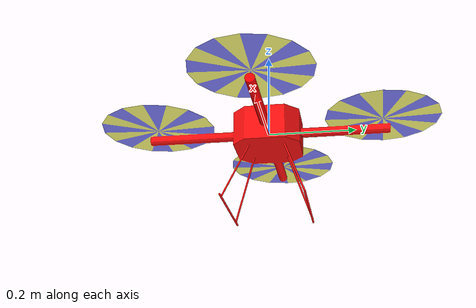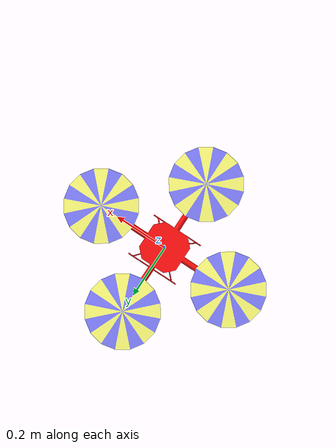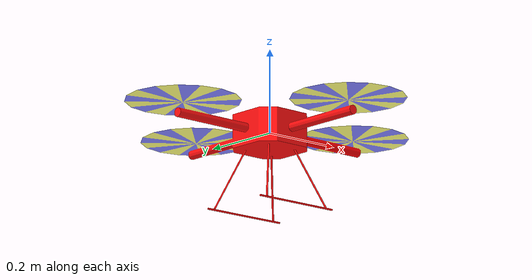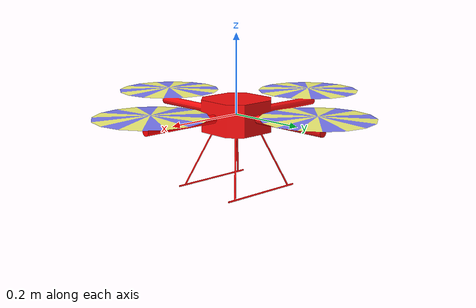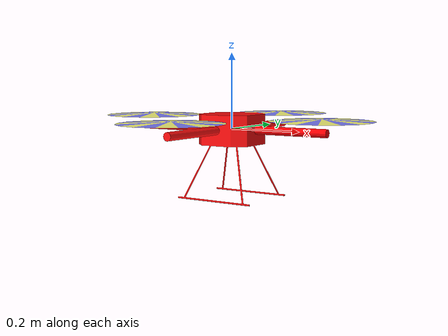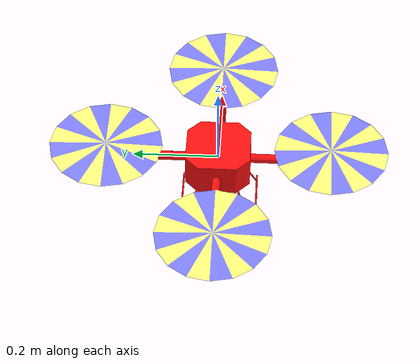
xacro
<?xml version="1.0"?>

<robot name="quadrotor" xmlns:xacro="http://www.ros.org/wiki/xacro">

    <xacro:property name="M_PI" value="3.1415926535897931" />

    <!-- Included URDF Files -->
    <xacro:include filename="$(find hector_quadrotor_description)/urdf/quadrotor_base.urdf.xacro" />

    <!-- Instantiate quadrotor_base_macro once (has no parameters atm) -->
    <xacro:quadrotor_base_macro />

    <!-- Forward facing camera -->
    <xacro:include filename="$(find hector_sensors_description)/urdf/generic_camera.urdf.xacro" />
    <xacro:generic_camera name="front_cam" parent="base_link" ros_topic="camera/image" cam_info_topic="camera/camera_info"
                          update_rate="30" res_x="640" res_y="480" image_format="R8G8B8" hfov="90">
        <origin xyz="0.4 0.0 -0" rpy="0 0 0"/>
    </xacro:generic_camera>

    <!-- Realsense camera -->
    <xacro:include filename="$(find hector_sensors_description)/urdf/realsense_camera.urdf.xacro" />
    <xacro:realsense_camera name="realsense_cam" parent="base_link">
        <origin xyz="0 0.0 -0" rpy="0 0 0"/>
    </xacro:realsense_camera>

</robot>

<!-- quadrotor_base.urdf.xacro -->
<robot xmlns:xacro="http://www.ros.org/wiki/xacro">

  <xacro:property name="pi" value="3.1415926535897931" />

  <!-- Main quadrotor link -->
  <xacro:macro name="quadrotor_base_macro">
    <link name="base_link">
      <inertial>
        <mass value="1.477" />
        <origin xyz="0 0 0" />
        <inertia ixx="0.01152" ixy="0.0" ixz="0.0" iyy="0.01152" iyz="0.0" izz="0.0218" />
      </inertial>

      <visual>
        <origin xyz="0 0 0" rpy="0 0 0" />
        <geometry>
          <mesh filename="package://hector_quadrotor_description/meshes/quadrotor/quadrotor_base.dae"/>
        </geometry>
      </visual>

      <collision>
        <origin xyz="0 0 0" rpy="0 0 0" />
        <geometry>
          <mesh filename="package://hector_quadrotor_description/meshes/quadrotor/quadrotor_base.stl"/>
        </geometry>
      </collision>
    </link>

    <!-- Sonar height sensor -->

  </xacro:macro>
</robot>

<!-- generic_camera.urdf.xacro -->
<robot xmlns:xacro="http://www.ros.org/wiki/xacro">
  <xacro:arg name="simulator" default="gazebo"/>
  <xacro:property name="M_PI" value="3.1415926535897931" />

  <xacro:macro name="generic_camera" params="name parent *origin ros_topic cam_info_topic update_rate res_x res_y image_format hfov">
    <joint name="${name}_joint" type="fixed">
      <xacro:insert_block name="origin" />
      <parent link="${parent}"/>
      <child link="${name}_link"/>
    </joint>

    <link name="${name}_link">
    </link>

    <joint name="${name}_optical_joint" type="fixed">
      <origin xyz="0 0 0" rpy="${-M_PI/2} 0.0 ${-M_PI/2}" />
      <parent link="${name}_link" />
      <child link="${name}_optical_frame"/>
    </joint>

    <link name="${name}_optical_frame"/>
    <gazebo reference="${name}_link">
      <sensor type="camera" name="${name}_camera_sensor">
        <update_rate>${update_rate}</update_rate>
        <camera>
          <horizontal_fov>${hfov * M_PI/180.0}</horizontal_fov>
          <image>
            <format>${image_format}</format>
            <width>${res_x}</width>
            <height>${res_y}</height>
          </image>
          <clip>
            <near>0.01</near>
            <far>100</far>
          </clip>
        </camera>

        <xacro:if value="${'$(arg simulator)' == 'gazebo'}">
          <plugin name="${name}_camera_controller" filename="libgazebo_ros_camera.so">
            <cameraName>${name}</cameraName>
            <imageTopicName>${ros_topic}</imageTopicName>
            <cameraInfoTopicName>${cam_info_topic}</cameraInfoTopicName>
            <frameName>${name}_optical_frame</frameName>
          </plugin>
        </xacro:if>
      </sensor>
    </gazebo>
  </xacro:macro>

</robot>

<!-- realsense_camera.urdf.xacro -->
<robot xmlns:xacro="http://www.ros.org/wiki/xacro">
    <xacro:property name="M_PI" value="3.1415926535897931" />

    <!--
     This macro only adds the model, it does not also add
     the openni gazebo plugin. See the 'asus_camera' macro below for that
    -->
    <xacro:macro name="realsense_camera_model" params="name parent *origin">
      <joint name="${name}_joint" type="fixed">
        <xacro:insert_block name="origin" />
        <parent link="${parent}"/>
        <child link="${name}_link"/>
      </joint>

      <link name="${name}_link">
        <inertial>
          <mass value="0.200" />
          <origin xyz="0 0 0" rpy="0 0 0" />
          <inertia ixx="5.8083e-4" ixy="0" ixz="0" iyy="3.0833e-5" iyz="0" izz="5.9083e-4" />
        </inertial>
        <visual>
          <origin xyz="0 0.051 0" rpy="0 0 0" />
          <geometry>
            <!--Dimensions taken from https://software.intel.com/en-us/realsense/devkit-->
            <box size="0.007 0.130 0.02" />
          </geometry>
          <material name="DarkGrey">
            <color rgba="0.3 0.3 0.3 1"/>
          </material>
        </visual>
        <collision>
          <origin xyz="0 0.051 0" rpy="0 0 0" />
          <geometry>
            <!--Dimensions taken from https://software.intel.com/en-us/realsense/devkit-->
            <box size="0.007 0.130 0.02" />
          </geometry>
        </collision>
      </link>

      <gazebo reference="${name}_link">
        <material>Gazebo/Grey</material>
      </gazebo>
    </xacro:macro>

    <xacro:macro name="realsense_camera_model_no_geom" params="name parent *origin">
      <joint name="${name}_joint" type="fixed">
        <xacro:insert_block name="origin" />
        <parent link="${parent}"/>
        <child link="${name}_link"/>
      </joint>

      <link name="${name}_link">
      </link>
    </xacro:macro>

    <xacro:macro name="realsense_camera_gazebo_plugin_macro" params="name parent image_topic depth_points_topic min_range max_range update_rate">
      <gazebo reference="${name}_link">
        <sensor type="depth" name="${name}">
          <update_rate>${update_rate}</update_rate>
          <camera>
            <horizontal_fov>${53.35 * M_PI/180.0}</horizontal_fov>
            <image>
              <format>B8G8R8</format>
              <width>640</width>
              <height>480</height>
            </image>
            <clip>
              <near>${min_range}</near>
              <far>${max_range}</far>
            </clip>
          </camera>
          <plugin name="${name}_camera_controller" filename="libgazebo_ros_openni_kinect.so">
            <cameraName>${name}</cameraName>
            <imageTopicName>rgb/${image_topic}</imageTopicName>
            <cameraInfoTopicName>rgb/camera_info</cameraInfoTopicName>
            <depthImageTopicName>depth/image_raw</depthImageTopicName>
            <depthImageCameraInfoTopicName>depth/camera_info</depthImageCameraInfoTopicName>
            <pointCloudTopicName>${depth_points_topic}</pointCloudTopicName>
            <frameName>${name}_depth_optical_frame</frameName>
          </plugin>
        </sensor>
      </gazebo>
    </xacro:macro>

    <!--
      Use the macro below for adding the realsense model with link geometry
    -->
    <xacro:macro name="realsense_camera" params="name parent *origin">
      <xacro:realsense_camera_model name="${name}" parent="${parent}">
        <xacro:insert_block name="origin" />
      </xacro:realsense_camera_model>

      <xacro:realsense_camera_gazebo_plugin_macro name="${name}" parent="${parent}" image_topic="image_raw" depth_points_topic="depth/points" min_range="0.3" max_range="9.0" update_rate="20"/>
    </xacro:macro>

    <!--
      Use the macro below for adding the realsense model without link geometry,
      e.g. if the sensor is added into preexisting geometry
    -->
    <xacro:macro name="realsense_camera_no_geom" params="name parent *origin">
      <xacro:realsense_camera_model_no_geom name="${name}" parent="${parent}">
        <xacro:insert_block name="origin" />
      </xacro:realsense_camera_model_no_geom>

      <xacro:realsense_camera_gazebo_plugin_macro name="${name}" parent="${parent}" image_topic="rgb/image_raw" depth_points_topic="depth/points" min_range="0.3" max_range="9.0" update_rate="20"/>
    </xacro:macro>

    <xacro:macro name="realsense_camera_no_geom_comprehensive_params" params="name parent *origin image_topic depth_points_topic min_range max_range update_rate">
      <xacro:realsense_camera_model_no_geom name="${name}" parent="${parent}">
        <xacro:insert_block name="origin" />
      </xacro:realsense_camera_model_no_geom>

      <xacro:realsense_camera_gazebo_plugin_macro name="${name}" parent="${parent}" image_topic="${image_topic}" depth_points_topic="${depth_points_topic}" min_range="${min_range}" max_range="${max_range}" update_rate="${update_rate}"/>
    </xacro:macro>

    <xacro:macro name="realsense_camera_comprehensive_params" params="name parent *origin image_topic depth_points_topic min_range max_range update_rate">
      <xacro:realsense_camera_model name="${name}" parent="${parent}">
        <xacro:insert_block name="origin" />
      </xacro:realsense_camera_model>

      <xacro:realsense_camera_gazebo_plugin_macro name="${name}" parent="${parent}" image_topic="${image_topic}" depth_points_topic="${depth_points_topic}" min_range="${min_range}" max_range="${max_range}" update_rate="${update_rate}"/>
    </xacro:macro>

  </robot>
